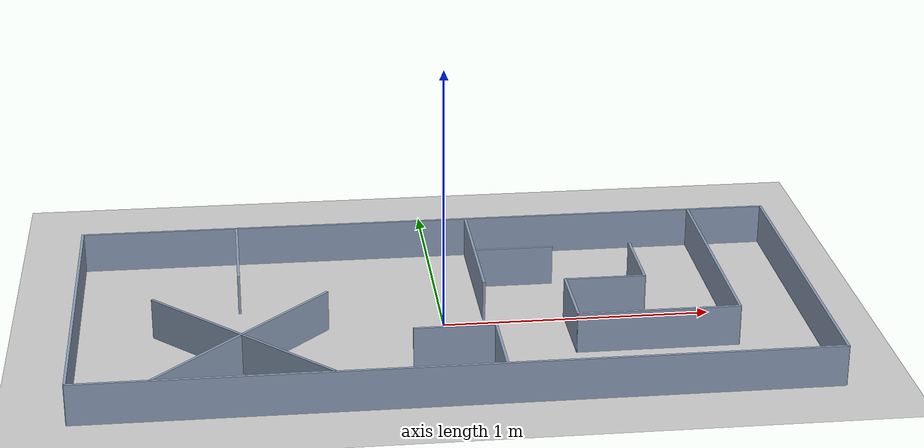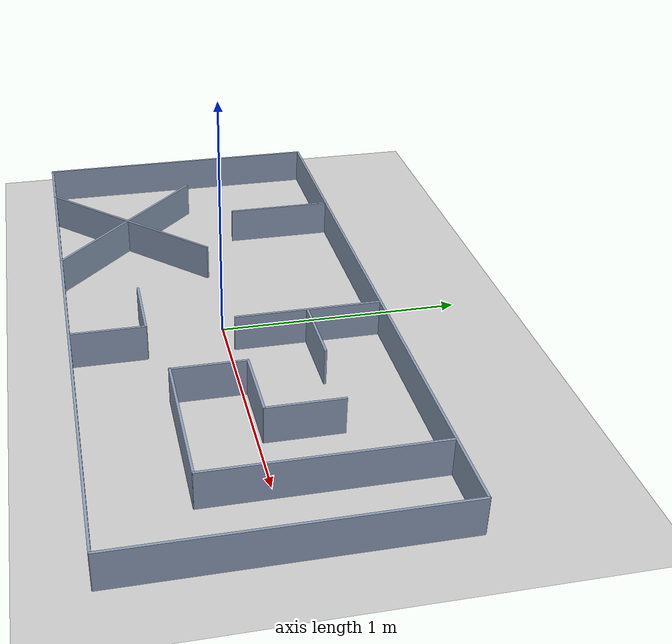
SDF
<?xml version="1.0"?>
<sdf version="1.6">
  <world name="map_260905">
    <plugin filename="gz-sim-physics-system" name="gz::sim::systems::Physics">
      <engine><filename>gz-physics-dartsim-plugin</filename></engine>
    </plugin>
    <plugin filename="gz-sim-user-commands-system" name="gz::sim::systems::UserCommands"/>
    <plugin filename="gz-sim-scene-broadcaster-system" name="gz::sim::systems::SceneBroadcaster"/>
    <plugin filename="gz-sim-sensors-system" name="gz::sim::systems::Sensors">
      <render_engine>ogre2</render_engine>
    </plugin>
    <plugin filename="gz-sim-imu-system" name="gz::sim::systems::Imu"/>

    <light type="directional" name="sun">
      <cast_shadows>false</cast_shadows>
      <pose>0 0 10 0 0 0</pose>
      <diffuse>0.9 0.9 0.9 1</diffuse>
      <specular>0.2 0.2 0.2 1</specular>
      <direction>-0.4 0.2 -0.9</direction>
    </light>

    <model name="ground_plane">
      <static>true</static>
      <link name="link">
        <collision name="collision">
          <geometry><plane><normal>0 0 1</normal><size>100 100</size></plane></geometry>
        </collision>
        <visual name="visual">
          <geometry><plane><normal>0 0 1</normal><size>100 100</size></plane></geometry>
          <material>
            <ambient>0.8 0.8 0.8 1</ambient><diffuse>0.8 0.8 0.8 1</diffuse>
            <specular>0.8 0.8 0.8 1</specular>
          </material>
        </visual>
      </link>
    </model>

    <model name="track_260905">
      <static>true</static>
      <pose>0 0 0 0 0 0</pose>
      <link name="link">
        <collision name="wall_00_col">
          <pose>-1.35250 0.00000 0.07750 0 0 0.0000000</pose>
          <geometry><box><size>0.01000 1.26000 0.15500</size></box></geometry>
          <surface><friction><ode><mu>0.9</mu><mu2>0.9</mu2></ode></friction></surface>
        </collision>
        <visual name="wall_00_vis">
          <pose>-1.35250 0.00000 0.07750 0 0 0.0000000</pose>
          <geometry><box><size>0.01000 1.26000 0.15500</size></box></geometry>
          <material>
            <ambient>0.30 0.35 0.45 1</ambient>
            <diffuse>0.55 0.62 0.72 1</diffuse>
            <specular>0.1 0.1 0.1 1</specular>
          </material>
        </visual>
        <collision name="wall_01_col">
          <pose>1.35250 0.00000 0.07750 0 0 0.0000000</pose>
          <geometry><box><size>0.01000 1.26000 0.15500</size></box></geometry>
          <surface><friction><ode><mu>0.9</mu><mu2>0.9</mu2></ode></friction></surface>
        </collision>
        <visual name="wall_01_vis">
          <pose>1.35250 0.00000 0.07750 0 0 0.0000000</pose>
          <geometry><box><size>0.01000 1.26000 0.15500</size></box></geometry>
          <material>
            <ambient>0.30 0.35 0.45 1</ambient>
            <diffuse>0.55 0.62 0.72 1</diffuse>
            <specular>0.1 0.1 0.1 1</specular>
          </material>
        </visual>
        <collision name="wall_02_col">
          <pose>0.00000 -0.62750 0.07750 0 0 0.0000000</pose>
          <geometry><box><size>2.71000 0.01000 0.15500</size></box></geometry>
          <surface><friction><ode><mu>0.9</mu><mu2>0.9</mu2></ode></friction></surface>
        </collision>
        <visual name="wall_02_vis">
          <pose>0.00000 -0.62750 0.07750 0 0 0.0000000</pose>
          <geometry><box><size>2.71000 0.01000 0.15500</size></box></geometry>
          <material>
            <ambient>0.30 0.35 0.45 1</ambient>
            <diffuse>0.55 0.62 0.72 1</diffuse>
            <specular>0.1 0.1 0.1 1</specular>
          </material>
        </visual>
        <collision name="wall_03_col">
          <pose>0.00000 0.62750 0.07750 0 0 0.0000000</pose>
          <geometry><box><size>2.71000 0.01000 0.15500</size></box></geometry>
          <surface><friction><ode><mu>0.9</mu><mu2>0.9</mu2></ode></friction></surface>
        </collision>
        <visual name="wall_03_vis">
          <pose>0.00000 0.62750 0.07750 0 0 0.0000000</pose>
          <geometry><box><size>2.71000 0.01000 0.15500</size></box></geometry>
          <material>
            <ambient>0.30 0.35 0.45 1</ambient>
            <diffuse>0.55 0.62 0.72 1</diffuse>
            <specular>0.1 0.1 0.1 1</specular>
          </material>
        </visual>
        <collision name="wall_04_col">
          <pose>-0.75435 0.39995 0.07750 0 0 0.0000000</pose>
          <geometry><box><size>0.01000 0.45000 0.15500</size></box></geometry>
          <surface><friction><ode><mu>0.9</mu><mu2>0.9</mu2></ode></friction></surface>
        </collision>
        <visual name="wall_04_vis">
          <pose>-0.75435 0.39995 0.07750 0 0 0.0000000</pose>
          <geometry><box><size>0.01000 0.45000 0.15500</size></box></geometry>
          <material>
            <ambient>0.30 0.35 0.45 1</ambient>
            <diffuse>0.55 0.62 0.72 1</diffuse>
            <specular>0.1 0.1 0.1 1</specular>
          </material>
        </visual>
        <collision name="wall_05_col">
          <pose>0.00495 -0.32745 0.07750 0 0 0.0000000</pose>
          <geometry><box><size>0.30000 0.01000 0.15500</size></box></geometry>
          <surface><friction><ode><mu>0.9</mu><mu2>0.9</mu2></ode></friction></surface>
        </collision>
        <visual name="wall_05_vis">
          <pose>0.00495 -0.32745 0.07750 0 0 0.0000000</pose>
          <geometry><box><size>0.30000 0.01000 0.15500</size></box></geometry>
          <material>
            <ambient>0.30 0.35 0.45 1</ambient>
            <diffuse>0.55 0.62 0.72 1</diffuse>
            <specular>0.1 0.1 0.1 1</specular>
          </material>
        </visual>
        <collision name="wall_06_col">
          <pose>0.15245 -0.47495 0.07750 0 0 0.0000000</pose>
          <geometry><box><size>0.01000 0.30000 0.15500</size></box></geometry>
          <surface><friction><ode><mu>0.9</mu><mu2>0.9</mu2></ode></friction></surface>
        </collision>
        <visual name="wall_06_vis">
          <pose>0.15245 -0.47495 0.07750 0 0 0.0000000</pose>
          <geometry><box><size>0.01000 0.30000 0.15500</size></box></geometry>
          <material>
            <ambient>0.30 0.35 0.45 1</ambient>
            <diffuse>0.55 0.62 0.72 1</diffuse>
            <specular>0.1 0.1 0.1 1</specular>
          </material>
        </visual>
        <collision name="wall_07_col">
          <pose>0.15245 0.32495 0.07750 0 0 0.0000000</pose>
          <geometry><box><size>0.01000 0.60000 0.15500</size></box></geometry>
          <surface><friction><ode><mu>0.9</mu><mu2>0.9</mu2></ode></friction></surface>
        </collision>
        <visual name="wall_07_vis">
          <pose>0.15245 0.32495 0.07750 0 0 0.0000000</pose>
          <geometry><box><size>0.01000 0.60000 0.15500</size></box></geometry>
          <material>
            <ambient>0.30 0.35 0.45 1</ambient>
            <diffuse>0.55 0.62 0.72 1</diffuse>
            <specular>0.1 0.1 0.1 1</specular>
          </material>
        </visual>
        <collision name="wall_08_col">
          <pose>0.30495 0.32245 0.07750 0 0 0.0000000</pose>
          <geometry><box><size>0.30000 0.01000 0.15500</size></box></geometry>
          <surface><friction><ode><mu>0.9</mu><mu2>0.9</mu2></ode></friction></surface>
        </collision>
        <visual name="wall_08_vis">
          <pose>0.30495 0.32245 0.07750 0 0 0.0000000</pose>
          <geometry><box><size>0.30000 0.01000 0.15500</size></box></geometry>
          <material>
            <ambient>0.30 0.35 0.45 1</ambient>
            <diffuse>0.55 0.62 0.72 1</diffuse>
            <specular>0.1 0.1 0.1 1</specular>
          </material>
        </visual>
        <collision name="wall_09_col">
          <pose>0.45745 -0.12500 0.07750 0 0 0.0000000</pose>
          <geometry><box><size>0.01000 0.29990 0.15500</size></box></geometry>
          <surface><friction><ode><mu>0.9</mu><mu2>0.9</mu2></ode></friction></surface>
        </collision>
        <visual name="wall_09_vis">
          <pose>0.45745 -0.12500 0.07750 0 0 0.0000000</pose>
          <geometry><box><size>0.01000 0.29990 0.15500</size></box></geometry>
          <material>
            <ambient>0.30 0.35 0.45 1</ambient>
            <diffuse>0.55 0.62 0.72 1</diffuse>
            <specular>0.1 0.1 0.1 1</specular>
          </material>
        </visual>
        <collision name="wall_10_col">
          <pose>0.60750 0.02245 0.07750 0 0 0.0000000</pose>
          <geometry><box><size>0.30510 0.01000 0.15500</size></box></geometry>
          <surface><friction><ode><mu>0.9</mu><mu2>0.9</mu2></ode></friction></surface>
        </collision>
        <visual name="wall_10_vis">
          <pose>0.60750 0.02245 0.07750 0 0 0.0000000</pose>
          <geometry><box><size>0.30510 0.01000 0.15500</size></box></geometry>
          <material>
            <ambient>0.30 0.35 0.45 1</ambient>
            <diffuse>0.55 0.62 0.72 1</diffuse>
            <specular>0.1 0.1 0.1 1</specular>
          </material>
        </visual>
        <collision name="wall_11_col">
          <pose>0.75500 -0.27245 0.07750 0 0 0.0000000</pose>
          <geometry><box><size>0.60010 0.01000 0.15500</size></box></geometry>
          <surface><friction><ode><mu>0.9</mu><mu2>0.9</mu2></ode></friction></surface>
        </collision>
        <visual name="wall_11_vis">
          <pose>0.75500 -0.27245 0.07750 0 0 0.0000000</pose>
          <geometry><box><size>0.60010 0.01000 0.15500</size></box></geometry>
          <material>
            <ambient>0.30 0.35 0.45 1</ambient>
            <diffuse>0.55 0.62 0.72 1</diffuse>
            <specular>0.1 0.1 0.1 1</specular>
          </material>
        </visual>
        <collision name="wall_12_col">
          <pose>0.75755 0.17245 0.07750 0 0 0.0000000</pose>
          <geometry><box><size>0.01000 0.30500 0.15500</size></box></geometry>
          <surface><friction><ode><mu>0.9</mu><mu2>0.9</mu2></ode></friction></surface>
        </collision>
        <visual name="wall_12_vis">
          <pose>0.75755 0.17245 0.07750 0 0 0.0000000</pose>
          <geometry><box><size>0.01000 0.30500 0.15500</size></box></geometry>
          <material>
            <ambient>0.30 0.35 0.45 1</ambient>
            <diffuse>0.55 0.62 0.72 1</diffuse>
            <specular>0.1 0.1 0.1 1</specular>
          </material>
        </visual>
        <collision name="wall_13_col">
          <pose>1.05255 0.17500 0.07750 0 0 0.0000000</pose>
          <geometry><box><size>0.01000 0.89990 0.15500</size></box></geometry>
          <surface><friction><ode><mu>0.9</mu><mu2>0.9</mu2></ode></friction></surface>
        </collision>
        <visual name="wall_13_vis">
          <pose>1.05255 0.17500 0.07750 0 0 0.0000000</pose>
          <geometry><box><size>0.01000 0.89990 0.15500</size></box></geometry>
          <material>
            <ambient>0.30 0.35 0.45 1</ambient>
            <diffuse>0.55 0.62 0.72 1</diffuse>
            <specular>0.1 0.1 0.1 1</specular>
          </material>
        </visual>
        <collision name="diag_0_col">
          <pose>-0.75357 -0.30857 0.07750 0 0 -0.7853982</pose>
          <geometry><box><size>0.90000 0.01000 0.15500</size></box></geometry>
          <surface><friction><ode><mu>0.9</mu><mu2>0.9</mu2></ode></friction></surface>
        </collision>
        <visual name="diag_0_vis">
          <pose>-0.75357 -0.30857 0.07750 0 0 -0.7853982</pose>
          <geometry><box><size>0.90000 0.01000 0.15500</size></box></geometry>
          <material>
            <ambient>0.30 0.35 0.45 1</ambient>
            <diffuse>0.55 0.62 0.72 1</diffuse>
            <specular>0.1 0.1 0.1 1</specular>
          </material>
        </visual>
        <collision name="diag_1_col">
          <pose>-0.75003 -0.30857 0.07750 0 0 0.7853982</pose>
          <geometry><box><size>0.90000 0.01000 0.15500</size></box></geometry>
          <surface><friction><ode><mu>0.9</mu><mu2>0.9</mu2></ode></friction></surface>
        </collision>
        <visual name="diag_1_vis">
          <pose>-0.75003 -0.30857 0.07750 0 0 0.7853982</pose>
          <geometry><box><size>0.90000 0.01000 0.15500</size></box></geometry>
          <material>
            <ambient>0.30 0.35 0.45 1</ambient>
            <diffuse>0.55 0.62 0.72 1</diffuse>
            <specular>0.1 0.1 0.1 1</specular>
          </material>
        </visual>
      </link>
    </model>

    <scene><shadows>false</shadows></scene>

    <gui fullscreen="0">
      <camera name="user_camera">
        <pose>0 -2.9 2.9 0 0.78 1.5707963</pose>
        <view_controller>orbit</view_controller>
        <projection_type>perspective</projection_type>
      </camera>
    </gui>

    <!-- The type is aligned with the explicitly requested engine above.
         Step/rate values below are retained, not a measured performance guarantee. -->
    <physics name="track_1ms" type="dart">
      <real_time_update_rate>1000.0</real_time_update_rate>
      <max_step_size>0.001</max_step_size>
      <real_time_factor>1</real_time_factor>
    </physics>
  </world>
</sdf>
